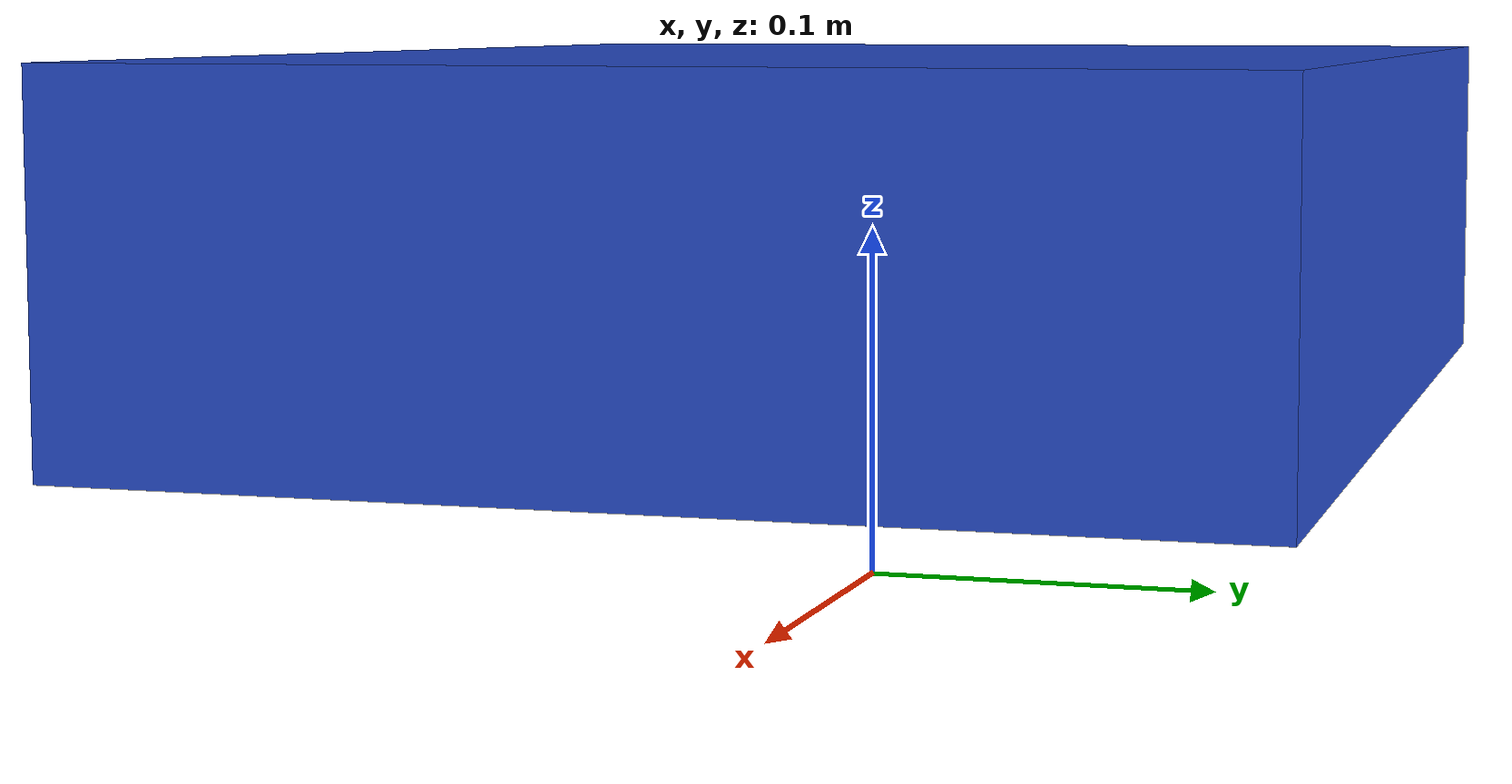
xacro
<?xml version="1.0"?>
<robot xmlns:xacro="http://www.ros.org/wiki/xacro">

  <!-- Include shared constants and inertia macros -->
  <!--
    xacro:include pulls another xacro file into this one.
    After this line, ${PI} and all inertia macros are available here.
    The filename is relative to this file's location.
  -->

  <!-- ═══════════════════════════════════════════
       ROBOT DIMENSIONS — change these properties
       to resize the entire robot automatically
       ═══════════════════════════════════════════ -->

  <!--
    All dimensions in metres. All masses in kilograms.
    Changing any value here updates the geometry, inertia,
    and joint positions automatically via ${} expressions.
  -->
  <xacro:property name="base_length"    value="0.40"/>  <!-- chassis x dimension -->
  <xacro:property name="base_width"     value="0.30"/>  <!-- chassis y dimension -->
  <xacro:property name="base_height"    value="0.10"/>  <!-- chassis z dimension -->
  <xacro:property name="base_mass"      value="4.0"/>   <!-- chassis mass in kg  -->

  <!-- ═══════════════════════════════════════════
       BASE FOOTPRINT LINK
       ═══════════════════════════════════════════ -->

  <link name="base_footprint"/>

  <!-- ═══════════════════════════════════════════
       BASE FOOTPRINT → BASE LINK JOINT
       ═══════════════════════════════════════════ -->

  <xacro:property name="ground_clearance"   value="0.05"/>   <!-- metres -->
  <joint name="base_footprint_joint" type="fixed">
    <parent link="base_footprint"/>
    <child  link="base_link"/>
    <origin xyz="0 0 ${base_height/2 + ground_clearance}" rpy="0 0 0"/>
  </joint>

  <!-- ═══════════════════════════════════════════
       BASE LINK — THE PHYSICAL CHASSIS
       ═══════════════════════════════════════════ -->

  <!--
    base_link is the physical body of the robot.
    Its origin sits at the geometric centre of the chassis box.
    All wheel joints are measured from this origin.
  -->
  <link name="base_link">

    <visual>
      <geometry>
        <box size="${base_length} ${base_width} ${base_height}"/>
      </geometry>
      <origin xyz="0 0 0" rpy="0 0 0"/>
      <material name="blue"/>
    </visual>

    <collision>
      <geometry>
        <box size="${base_length} ${base_width} ${base_height}"/>
      </geometry>
      <origin xyz="0 0 0" rpy="0 0 0"/>
    </collision>

    <xacro:box_inertia
      m="${base_mass}"
      x="${base_length}"
      y="${base_width}"
      z="${base_height}"/>

  </link>

</robot>
